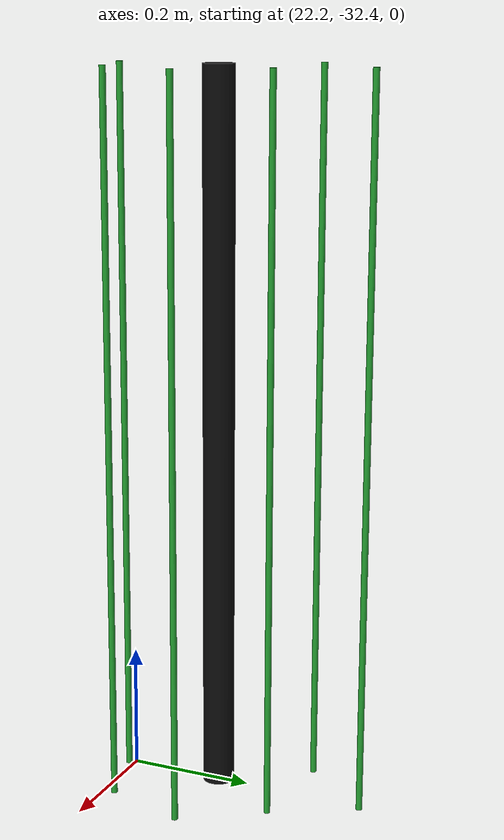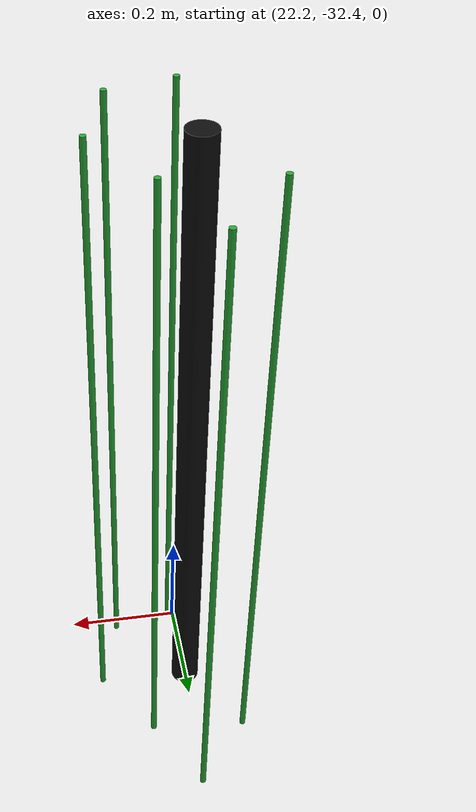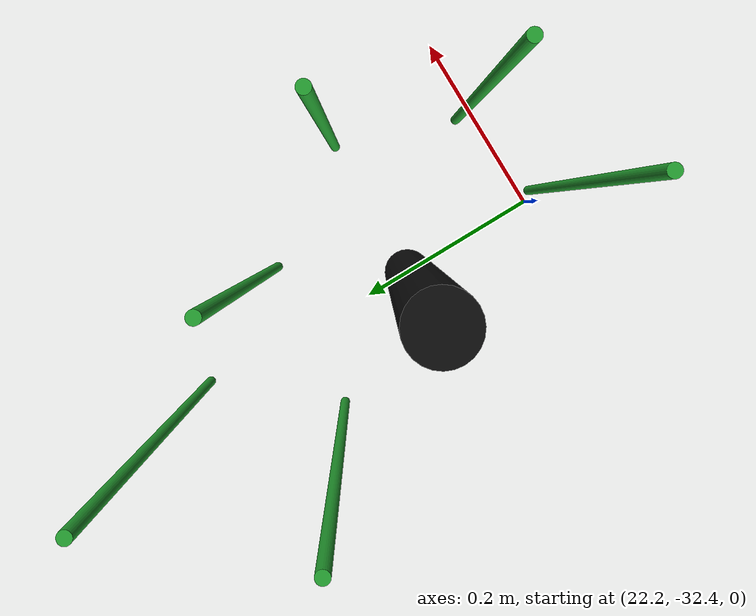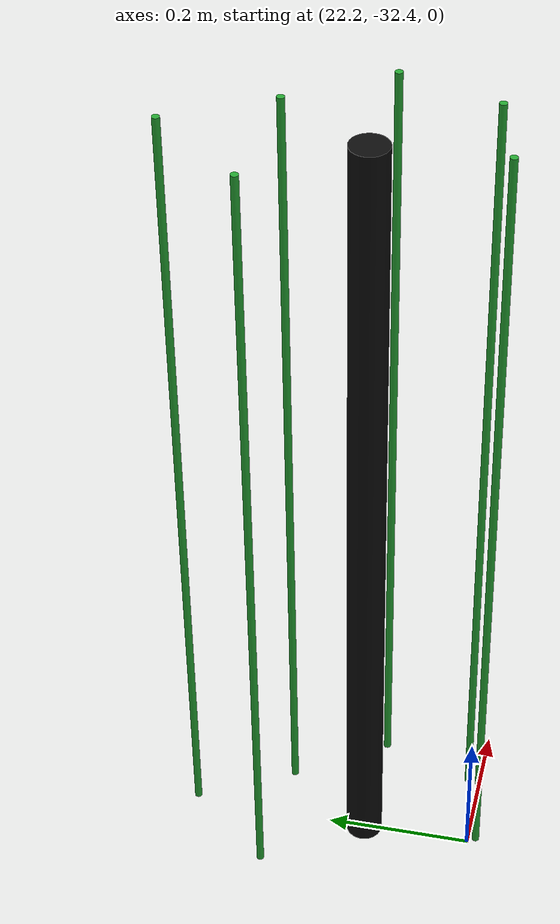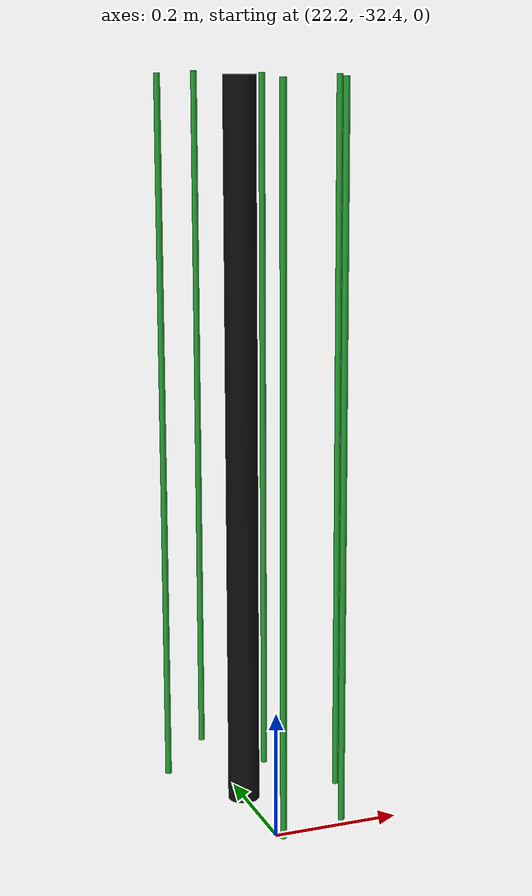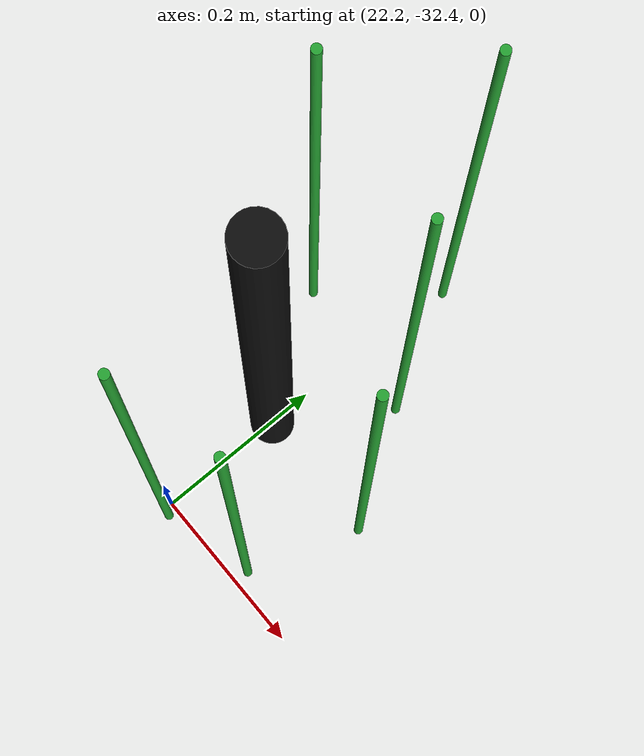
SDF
<sdf version="1.6">
 <world name="default">
  <model name="pole_16">
   <static>1</static>
   <pose>22.2 -32.25 0.575 0 -0 0</pose>
   <link name="link">
    <collision name="collision">
     <geometry><cylinder><length>1.15</length><radius>0.025</radius></cylinder></geometry>
    </collision>
    <visual name="visual">
     <geometry><cylinder><length>1.15</length><radius>0.025</radius></cylinder></geometry>
     <material>
      <script><uri>file://media/materials/scripts/gazebo.material</uri><name>Gazebo/Chrome</name></script>
      <shader type="vertex"><normal_map>__default__</normal_map></shader>
      <emissive>0.1 0.1 0.1 1</emissive>
      <specular>0.01 0.01 0.01 1</specular>
      <ambient>0.5 0.5 0.5 1</ambient>
      <diffuse>0.05 0.05 0.05 1</diffuse>
     </material>
    </visual>
   </link>
  </model>
  <model name="pole_27_clone_clone_155">
   <link name="link">
    <inertial>
     <mass>1</mass>
     <inertia><ixx>1</ixx><ixy>0</ixy><ixz>0</ixz><iyy>1</iyy><iyz>0</iyz><izz>1</izz></inertia>
    </inertial>
    <visual name="visual">
     <geometry><cylinder><length>1.15</length><radius>0.005</radius></cylinder></geometry>
     <material>
      <script><uri>file://media/materials/scripts/gazebo.material</uri><name>Gazebo/Green</name></script>
      <shader type="vertex"><normal_map>__default__</normal_map></shader>
      <emissive>0 0.1 0 1</emissive>
      <specular>0 0.01 0 1</specular>
      <ambient>0 0.5 0 1</ambient>
      <diffuse>0 0.05 0 1</diffuse>
     </material>
    </visual>
    <collision name="collision">
     <geometry><cylinder><radius>0.005</radius><length>1.15</length></cylinder></geometry>
     <surface>
      <friction>
       <ode><mu>1</mu><mu2>1</mu2><fdir1>0 0 0</fdir1><slip1>0</slip1><slip2>0</slip2></ode>
       <torsional>
        <coefficient>1</coefficient>
        <patch_radius>0</patch_radius>
        <surface_radius>0</surface_radius>
        <use_patch_radius>1</use_patch_radius>
        <ode><slip>0</slip></ode>
       </torsional>
      </friction>
      <bounce><restitution_coefficient>0</restitution_coefficient><threshold>1e+06</threshold></bounce>
      <contact>
       <collide_without_contact>0</collide_without_contact>
       <collide_without_contact_bitmask>1</collide_without_contact_bitmask>
       <collide_bitmask>1</collide_bitmask>
       <ode>
        <soft_cfm>0</soft_cfm>
        <soft_erp>0.2</soft_erp>
        <kp>1e+13</kp>
        <kd>1</kd>
        <max_vel>0.01</max_vel>
        <min_depth>0</min_depth>
       </ode>
       <bullet>
        <split_impulse>1</split_impulse>
        <split_impulse_penetration_threshold>-0.01</split_impulse_penetration_threshold>
        <soft_cfm>0</soft_cfm>
        <soft_erp>0.2</soft_erp>
        <kp>1e+13</kp>
        <kd>1</kd>
       </bullet>
      </contact>
     </surface>
    </collision>
   </link>
   <static>1</static>
   <pose>22.2081 -32.4105 0.575 0 -0 0</pose>
  </model>
  <model name="pole_27_clone_clone_160">
   <link name="link">
    <inertial>
     <mass>1</mass>
     <inertia><ixx>1</ixx><ixy>0</ixy><ixz>0</ixz><iyy>1</iyy><iyz>0</iyz><izz>1</izz></inertia>
    </inertial>
    <visual name="visual">
     <geometry><cylinder><length>1.15</length><radius>0.005</radius></cylinder></geometry>
     <material>
      <script><uri>file://media/materials/scripts/gazebo.material</uri><name>Gazebo/Green</name></script>
      <shader type="vertex"><normal_map>__default__</normal_map></shader>
      <emissive>0 0.1 0 1</emissive>
      <specular>0 0.01 0 1</specular>
      <ambient>0 0.5 0 1</ambient>
      <diffuse>0 0.05 0 1</diffuse>
     </material>
    </visual>
    <collision name="collision">
     <geometry><cylinder><radius>0.005</radius><length>1.15</length></cylinder></geometry>
     <surface>
      <friction>
       <ode><mu>1</mu><mu2>1</mu2><fdir1>0 0 0</fdir1><slip1>0</slip1><slip2>0</slip2></ode>
       <torsional>
        <coefficient>1</coefficient>
        <patch_radius>0</patch_radius>
        <surface_radius>0</surface_radius>
        <use_patch_radius>1</use_patch_radius>
        <ode><slip>0</slip></ode>
       </torsional>
      </friction>
      <bounce><restitution_coefficient>0</restitution_coefficient><threshold>1e+06</threshold></bounce>
      <contact>
       <collide_without_contact>0</collide_without_contact>
       <collide_without_contact_bitmask>1</collide_without_contact_bitmask>
       <collide_bitmask>1</collide_bitmask>
       <ode>
        <soft_cfm>0</soft_cfm>
        <soft_erp>0.2</soft_erp>
        <kp>1e+13</kp>
        <kd>1</kd>
        <max_vel>0.01</max_vel>
        <min_depth>0</min_depth>
       </ode>
       <bullet>
        <split_impulse>1</split_impulse>
        <split_impulse_penetration_threshold>-0.01</split_impulse_penetration_threshold>
        <soft_cfm>0</soft_cfm>
        <soft_erp>0.2</soft_erp>
        <kp>1e+13</kp>
        <kd>1</kd>
       </bullet>
      </contact>
     </surface>
    </collision>
   </link>
   <static>1</static>
   <pose>22.3594 -32.2533 0.575 0 -0 0</pose>
  </model>
  <model name="pole_27_clone_clone_161">
   <link name="link">
    <inertial>
     <mass>1</mass>
     <inertia><ixx>1</ixx><ixy>0</ixy><ixz>0</ixz><iyy>1</iyy><iyz>0</iyz><izz>1</izz></inertia>
    </inertial>
    <visual name="visual">
     <geometry><cylinder><length>1.15</length><radius>0.005</radius></cylinder></geometry>
     <material>
      <script><uri>file://media/materials/scripts/gazebo.material</uri><name>Gazebo/Green</name></script>
      <shader type="vertex"><normal_map>__default__</normal_map></shader>
      <emissive>0 0.1 0 1</emissive>
      <specular>0 0.01 0 1</specular>
      <ambient>0 0.5 0 1</ambient>
      <diffuse>0 0.05 0 1</diffuse>
     </material>
    </visual>
    <collision name="collision">
     <geometry><cylinder><radius>0.005</radius><length>1.15</length></cylinder></geometry>
     <surface>
      <friction>
       <ode><mu>1</mu><mu2>1</mu2><fdir1>0 0 0</fdir1><slip1>0</slip1><slip2>0</slip2></ode>
       <torsional>
        <coefficient>1</coefficient>
        <patch_radius>0</patch_radius>
        <surface_radius>0</surface_radius>
        <use_patch_radius>1</use_patch_radius>
        <ode><slip>0</slip></ode>
       </torsional>
      </friction>
      <bounce><restitution_coefficient>0</restitution_coefficient><threshold>1e+06</threshold></bounce>
      <contact>
       <collide_without_contact>0</collide_without_contact>
       <collide_without_contact_bitmask>1</collide_without_contact_bitmask>
       <collide_bitmask>1</collide_bitmask>
       <ode>
        <soft_cfm>0</soft_cfm>
        <soft_erp>0.2</soft_erp>
        <kp>1e+13</kp>
        <kd>1</kd>
        <max_vel>0.01</max_vel>
        <min_depth>0</min_depth>
       </ode>
       <bullet>
        <split_impulse>1</split_impulse>
        <split_impulse_penetration_threshold>-0.01</split_impulse_penetration_threshold>
        <soft_cfm>0</soft_cfm>
        <soft_erp>0.2</soft_erp>
        <kp>1e+13</kp>
        <kd>1</kd>
       </bullet>
      </contact>
     </surface>
    </collision>
   </link>
   <static>1</static>
   <pose>22.3162 -32.3821 0.575 0 -0 0</pose>
  </model>
  <model name="pole_27_clone_clone_162">
   <link name="link">
    <inertial>
     <mass>1</mass>
     <inertia><ixx>1</ixx><ixy>0</ixy><ixz>0</ixz><iyy>1</iyy><iyz>0</iyz><izz>1</izz></inertia>
    </inertial>
    <visual name="visual">
     <geometry><cylinder><length>1.15</length><radius>0.005</radius></cylinder></geometry>
     <material>
      <script><uri>file://media/materials/scripts/gazebo.material</uri><name>Gazebo/Green</name></script>
      <shader type="vertex"><normal_map>__default__</normal_map></shader>
      <emissive>0 0.1 0 1</emissive>
      <specular>0 0.01 0 1</specular>
      <ambient>0 0.5 0 1</ambient>
      <diffuse>0 0.05 0 1</diffuse>
     </material>
    </visual>
    <collision name="collision">
     <geometry><cylinder><radius>0.005</radius><length>1.15</length></cylinder></geometry>
     <surface>
      <friction>
       <ode><mu>1</mu><mu2>1</mu2><fdir1>0 0 0</fdir1><slip1>0</slip1><slip2>0</slip2></ode>
       <torsional>
        <coefficient>1</coefficient>
        <patch_radius>0</patch_radius>
        <surface_radius>0</surface_radius>
        <use_patch_radius>1</use_patch_radius>
        <ode><slip>0</slip></ode>
       </torsional>
      </friction>
      <bounce><restitution_coefficient>0</restitution_coefficient><threshold>1e+06</threshold></bounce>
      <contact>
       <collide_without_contact>0</collide_without_contact>
       <collide_without_contact_bitmask>1</collide_without_contact_bitmask>
       <collide_bitmask>1</collide_bitmask>
       <ode>
        <soft_cfm>0</soft_cfm>
        <soft_erp>0.2</soft_erp>
        <kp>1e+13</kp>
        <kd>1</kd>
        <max_vel>0.01</max_vel>
        <min_depth>0</min_depth>
       </ode>
       <bullet>
        <split_impulse>1</split_impulse>
        <split_impulse_penetration_threshold>-0.01</split_impulse_penetration_threshold>
        <soft_cfm>0</soft_cfm>
        <soft_erp>0.2</soft_erp>
        <kp>1e+13</kp>
        <kd>1</kd>
       </bullet>
      </contact>
     </surface>
    </collision>
   </link>
   <static>1</static>
   <pose>22.2789 -32.1308 0.575 0 -0 0</pose>
  </model>
  <model name="pole_27_clone_clone_163">
   <link name="link">
    <inertial>
     <mass>1</mass>
     <inertia><ixx>1</ixx><ixy>0</ixy><ixz>0</ixz><iyy>1</iyy><iyz>0</iyz><izz>1</izz></inertia>
    </inertial>
    <visual name="visual">
     <geometry><cylinder><length>1.15</length><radius>0.005</radius></cylinder></geometry>
     <material>
      <script><uri>file://media/materials/scripts/gazebo.material</uri><name>Gazebo/Green</name></script>
      <shader type="vertex"><normal_map>__default__</normal_map></shader>
      <emissive>0 0.1 0 1</emissive>
      <specular>0 0.01 0 1</specular>
      <ambient>0 0.5 0 1</ambient>
      <diffuse>0 0.05 0 1</diffuse>
     </material>
    </visual>
    <collision name="collision">
     <geometry><cylinder><radius>0.005</radius><length>1.15</length></cylinder></geometry>
     <surface>
      <friction>
       <ode><mu>1</mu><mu2>1</mu2><fdir1>0 0 0</fdir1><slip1>0</slip1><slip2>0</slip2></ode>
       <torsional>
        <coefficient>1</coefficient>
        <patch_radius>0</patch_radius>
        <surface_radius>0</surface_radius>
        <use_patch_radius>1</use_patch_radius>
        <ode><slip>0</slip></ode>
       </torsional>
      </friction>
      <bounce><restitution_coefficient>0</restitution_coefficient><threshold>1e+06</threshold></bounce>
      <contact>
       <collide_without_contact>0</collide_without_contact>
       <collide_without_contact_bitmask>1</collide_without_contact_bitmask>
       <collide_bitmask>1</collide_bitmask>
       <ode>
        <soft_cfm>0</soft_cfm>
        <soft_erp>0.2</soft_erp>
        <kp>1e+13</kp>
        <kd>1</kd>
        <max_vel>0.01</max_vel>
        <min_depth>0</min_depth>
       </ode>
       <bullet>
        <split_impulse>1</split_impulse>
        <split_impulse_penetration_threshold>-0.01</split_impulse_penetration_threshold>
        <soft_cfm>0</soft_cfm>
        <soft_erp>0.2</soft_erp>
        <kp>1e+13</kp>
        <kd>1</kd>
       </bullet>
      </contact>
     </surface>
    </collision>
   </link>
   <static>1</static>
   <pose>22.1131 -32.1171 0.575 0 -0 0</pose>
  </model>
  <model name="pole_27_clone_clone_164">
   <link name="link">
    <inertial>
     <mass>1</mass>
     <inertia><ixx>1</ixx><ixy>0</ixy><ixz>0</ixz><iyy>1</iyy><iyz>0</iyz><izz>1</izz></inertia>
    </inertial>
    <visual name="visual">
     <geometry><cylinder><length>1.15</length><radius>0.005</radius></cylinder></geometry>
     <material>
      <script><uri>file://media/materials/scripts/gazebo.material</uri><name>Gazebo/Green</name></script>
      <shader type="vertex"><normal_map>__default__</normal_map></shader>
      <emissive>0 0.1 0 1</emissive>
      <specular>0 0.01 0 1</specular>
      <ambient>0 0.5 0 1</ambient>
      <diffuse>0 0.05 0 1</diffuse>
     </material>
    </visual>
    <collision name="collision">
     <geometry><cylinder><radius>0.005</radius><length>1.15</length></cylinder></geometry>
     <surface>
      <friction>
       <ode><mu>1</mu><mu2>1</mu2><fdir1>0 0 0</fdir1><slip1>0</slip1><slip2>0</slip2></ode>
       <torsional>
        <coefficient>1</coefficient>
        <patch_radius>0</patch_radius>
        <surface_radius>0</surface_radius>
        <use_patch_radius>1</use_patch_radius>
        <ode><slip>0</slip></ode>
       </torsional>
      </friction>
      <bounce><restitution_coefficient>0</restitution_coefficient><threshold>1e+06</threshold></bounce>
      <contact>
       <collide_without_contact>0</collide_without_contact>
       <collide_without_contact_bitmask>1</collide_without_contact_bitmask>
       <collide_bitmask>1</collide_bitmask>
       <ode>
        <soft_cfm>0</soft_cfm>
        <soft_erp>0.2</soft_erp>
        <kp>1e+13</kp>
        <kd>1</kd>
        <max_vel>0.01</max_vel>
        <min_depth>0</min_depth>
       </ode>
       <bullet>
        <split_impulse>1</split_impulse>
        <split_impulse_penetration_threshold>-0.01</split_impulse_penetration_threshold>
        <soft_cfm>0</soft_cfm>
        <soft_erp>0.2</soft_erp>
        <kp>1e+13</kp>
        <kd>1</kd>
       </bullet>
      </contact>
     </surface>
    </collision>
   </link>
   <static>1</static>
   <pose>22.2092 -32.0022 0.575 0 -0 0</pose>
  </model>
 </world>
</sdf>
